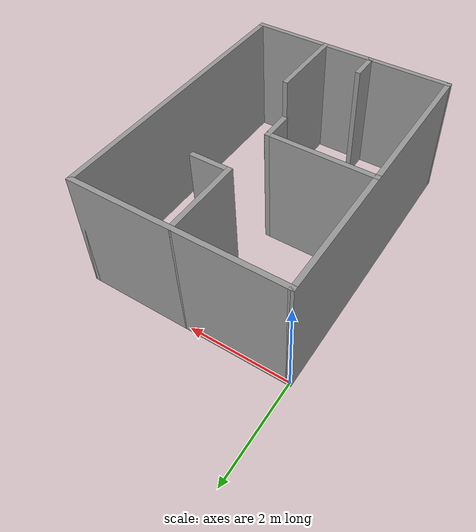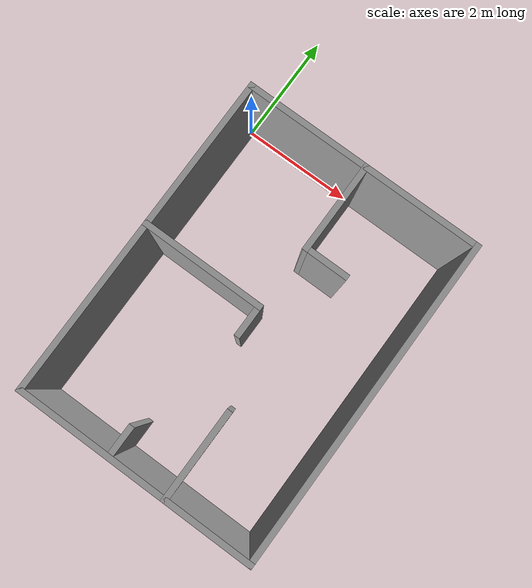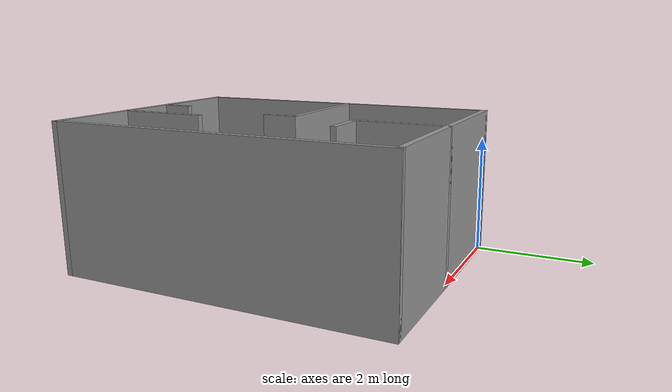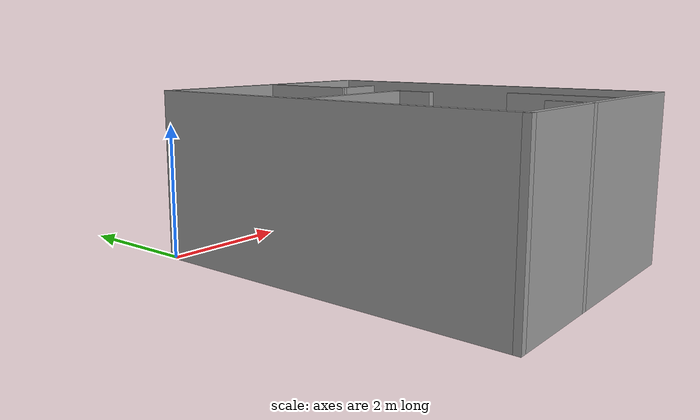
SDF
<?xml version='1.0'?>
<sdf version='1.7'>
  <model name='maze1'>
    <pose>2.05 -2.8 0 0 -0 0</pose>
    <link name='Wall_56'>
      <collision name='Wall_56_Collision'>
        <geometry>
          <box>
            <size>4.2 0.1 2.5</size>
          </box>
        </geometry>
        <pose>0 0 1.25 0 -0 0</pose>
      </collision>
      <visual name='Wall_56_Visual'>
        <pose>0 0 1.25 0 -0 0</pose>
        <geometry>
          <box>
            <size>4.2 0.1 2.5</size>
          </box>
        </geometry>
        <material>
          <script>
            <uri>file://media/materials/scripts/gazebo.material</uri>
            <name>Gazebo/Grey</name>
          </script>
          <ambient>1 1 1 1</ambient>
        </material>
        <meta>
          <layer>0</layer>
        </meta>
      </visual>
      <pose>0 2.8 0 0 -0 0</pose>
    </link>
    <link name='Wall_62'>
      <collision name='Wall_62_Collision'>
        <geometry>
          <box>
            <size>5.7 0.1 2.5</size>
          </box>
        </geometry>
        <pose>0 0 1.25 0 -0 0</pose>
      </collision>
      <visual name='Wall_62_Visual'>
        <pose>0 0 1.25 0 -0 0</pose>
        <geometry>
          <box>
            <size>5.7 0.1 2.5</size>
          </box>
        </geometry>
        <material>
          <script>
            <uri>file://media/materials/scripts/gazebo.material</uri>
            <name>Gazebo/Grey</name>
          </script>
          <ambient>1 1 1 1</ambient>
        </material>
        <meta>
          <layer>0</layer>
        </meta>
      </visual>
      <pose>2.05 0 0 0 -0 -1.5708</pose>
    </link>
    <link name='Wall_64'>
      <collision name='Wall_64_Collision'>
        <geometry>
          <box>
            <size>4.2 0.1 2.5</size>
          </box>
        </geometry>
        <pose>0 0 1.25 0 -0 0</pose>
      </collision>
      <visual name='Wall_64_Visual'>
        <pose>0 0 1.25 0 -0 0</pose>
        <geometry>
          <box>
            <size>4.2 0.1 2.5</size>
          </box>
        </geometry>
        <material>
          <script>
            <uri>file://media/materials/scripts/gazebo.material</uri>
            <name>Gazebo/Grey</name>
          </script>
          <ambient>1 1 1 1</ambient>
        </material>
        <meta>
          <layer>0</layer>
        </meta>
      </visual>
      <pose>0 -2.8 0 0 -0 3.14159</pose>
    </link>
    <link name='Wall_66'>
      <collision name='Wall_66_Collision'>
        <geometry>
          <box>
            <size>5.7 0.1 2.5</size>
          </box>
        </geometry>
        <pose>0 0 1.25 0 -0 0</pose>
      </collision>
      <visual name='Wall_66_Visual'>
        <pose>0 0 1.25 0 -0 0</pose>
        <geometry>
          <box>
            <size>5.7 0.1 2.5</size>
          </box>
        </geometry>
        <material>
          <script>
            <uri>file://media/materials/scripts/gazebo.material</uri>
            <name>Gazebo/Grey</name>
          </script>
          <ambient>1 1 1 1</ambient>
        </material>
        <meta>
          <layer>0</layer>
        </meta>
      </visual>
      <pose>-2.05 0 0 0 -0 1.5708</pose>
    </link>
    <link name='Wall_68'>
      <collision name='Wall_68_Collision'>
        <geometry>
          <box>
            <size>1.6 0.1 2.5</size>
          </box>
        </geometry>
        <pose>0 0 1.25 0 -0 0</pose>
      </collision>
      <visual name='Wall_68_Visual'>
        <pose>0 0 1.25 0 -0 0</pose>
        <geometry>
          <box>
            <size>1.6 0.1 2.5</size>
          </box>
        </geometry>
        <material>
          <script>
            <uri>file://media/materials/scripts/gazebo.material</uri>
            <name>Gazebo/Grey</name>
          </script>
          <ambient>1 1 1 1</ambient>
        </material>
        <meta>
          <layer>0</layer>
        </meta>
      </visual>
      <pose>0.05 2.05 0 0 -0 -1.5708</pose>
    </link>
    <link name='Wall_70'>
      <collision name='Wall_70_Collision'>
        <geometry>
          <box>
            <size>0.8 0.1 2.5</size>
          </box>
        </geometry>
        <pose>0 0 1.25 0 -0 0</pose>
      </collision>
      <visual name='Wall_70_Visual'>
        <pose>0 0 1.25 0 -0 0</pose>
        <geometry>
          <box>
            <size>0.8 0.1 2.5</size>
          </box>
        </geometry>
        <material>
          <script>
            <uri>file://media/materials/scripts/gazebo.material</uri>
            <name>Gazebo/Grey</name>
          </script>
          <ambient>1 1 1 1</ambient>
        </material>
        <meta>
          <layer>0</layer>
        </meta>
      </visual>
      <pose>0.4 1.3 0 0 -0 0</pose>
    </link>
    <link name='Wall_72'>
      <collision name='Wall_72_Collision'>
        <geometry>
          <box>
            <size>2.15 0.1 2.5</size>
          </box>
        </geometry>
        <pose>0 0 1.25 0 -0 0</pose>
      </collision>
      <visual name='Wall_72_Visual'>
        <pose>0 0 1.25 0 -0 0</pose>
        <geometry>
          <box>
            <size>2.15 0.1 2.5</size>
          </box>
        </geometry>
        <material>
          <script>
            <uri>file://media/materials/scripts/gazebo.material</uri>
            <name>Gazebo/Grey</name>
          </script>
          <ambient>1 1 1 1</ambient>
        </material>
        <meta>
          <layer>0</layer>
        </meta>
      </visual>
      <pose>-1.025 0.2 0 0 -0 0</pose>
    </link>
    <link name='Wall_74'>
      <collision name='Wall_74_Collision'>
        <geometry>
          <box>
            <size>0.6 0.1 2.5</size>
          </box>
        </geometry>
        <pose>0 0 1.25 0 -0 0</pose>
      </collision>
      <visual name='Wall_74_Visual'>
        <pose>0 0 1.25 0 -0 0</pose>
        <geometry>
          <box>
            <size>0.6 0.1 2.5</size>
          </box>
        </geometry>
        <material>
          <script>
            <uri>file://media/materials/scripts/gazebo.material</uri>
            <name>Gazebo/Grey</name>
          </script>
          <ambient>1 1 1 1</ambient>
        </material>
        <meta>
          <layer>0</layer>
        </meta>
      </visual>
      <pose>0 -0.05 0 0 -0 -1.5708</pose>
    </link>
    <link name='Wall_76'>
      <collision name='Wall_76_Collision'>
        <geometry>
          <box>
            <size>0.6 0.1 2.5</size>
          </box>
        </geometry>
        <pose>0 0 1.25 0 -0 0</pose>
      </collision>
      <visual name='Wall_76_Visual'>
        <pose>0 0 1.25 0 -0 0</pose>
        <geometry>
          <box>
            <size>0.6 0.1 2.5</size>
          </box>
        </geometry>
        <material>
          <script>
            <uri>file://media/materials/scripts/gazebo.material</uri>
            <name>Gazebo/Grey</name>
          </script>
          <ambient>1 1 1 1</ambient>
        </material>
        <meta>
          <layer>0</layer>
        </meta>
      </visual>
      <pose>-0.45 -2.55 0 0 -0 1.5708</pose>
    </link>
    <link name='Wall_80'>
      <collision name='Wall_80_Collision'>
        <geometry>
          <box>
            <size>1.6 0.1 2.5</size>
          </box>
        </geometry>
        <pose>0 0 1.25 0 -0 0</pose>
      </collision>
      <visual name='Wall_80_Visual'>
        <pose>0 0 1.25 0 -0 0</pose>
        <geometry>
          <box>
            <size>1.6 0.1 2.5</size>
          </box>
        </geometry>
        <material>
          <script>
            <uri>file://media/materials/scripts/gazebo.material</uri>
            <name>Gazebo/Grey</name>
          </script>
          <ambient>1 1 1 1</ambient>
        </material>
        <meta>
          <layer>0</layer>
        </meta>
      </visual>
      <pose>0.55 -2.05 0 0 -0 1.5708</pose>
    </link>
    <static>1</static>
  </model>
</sdf>
